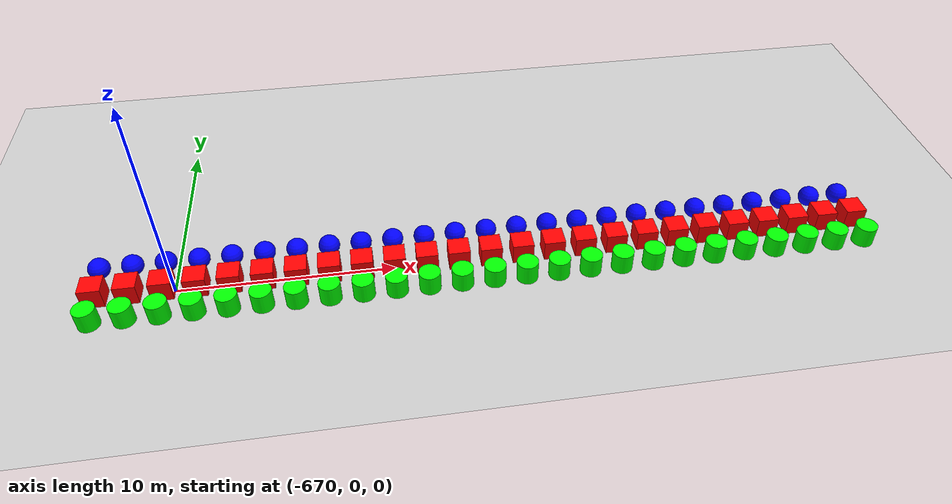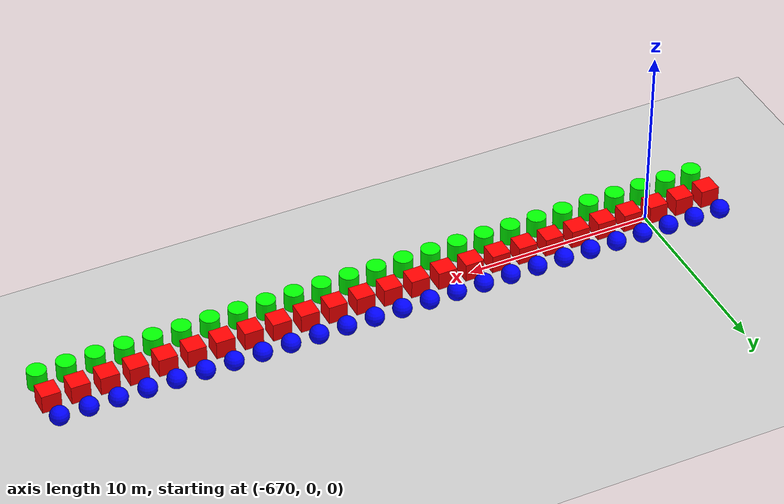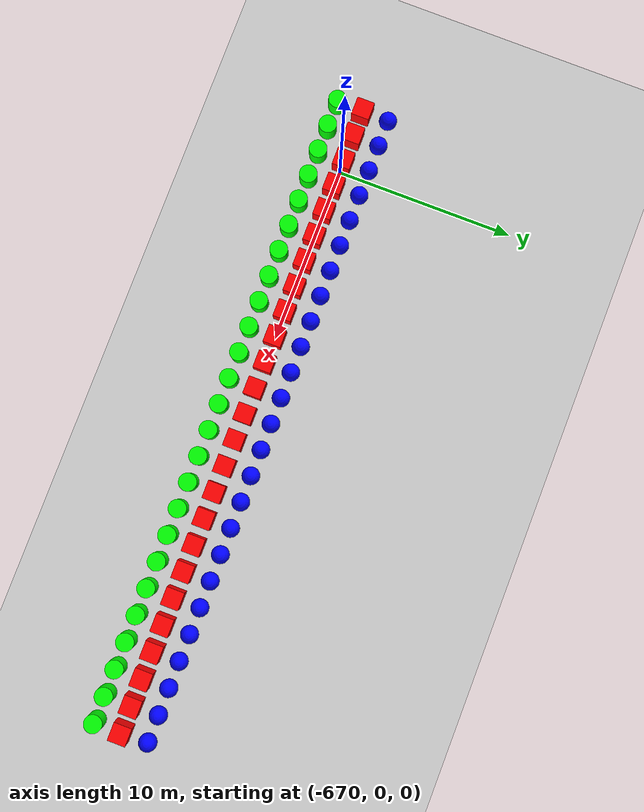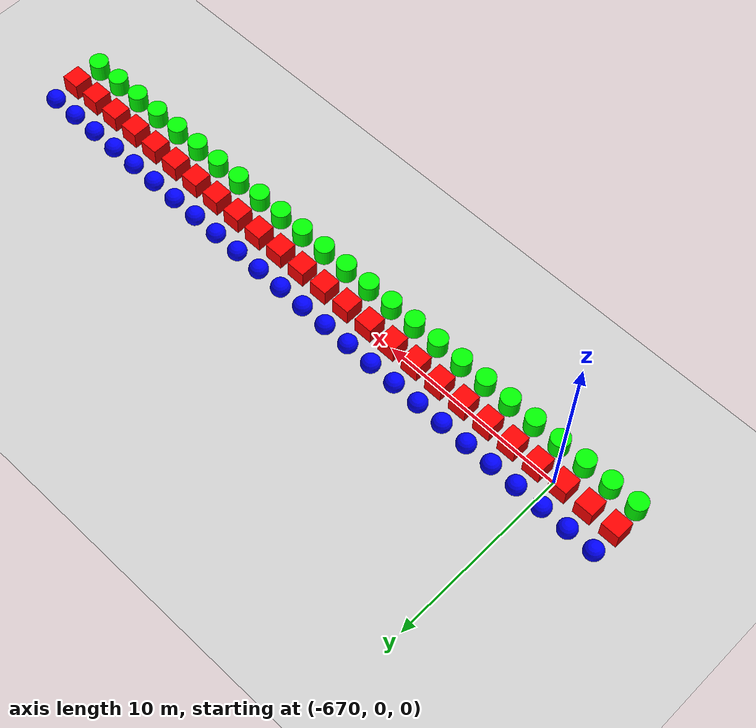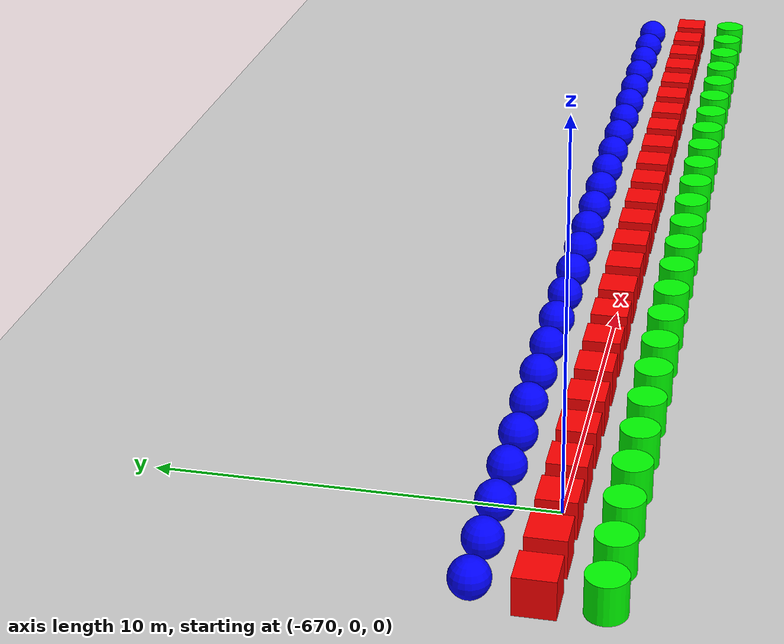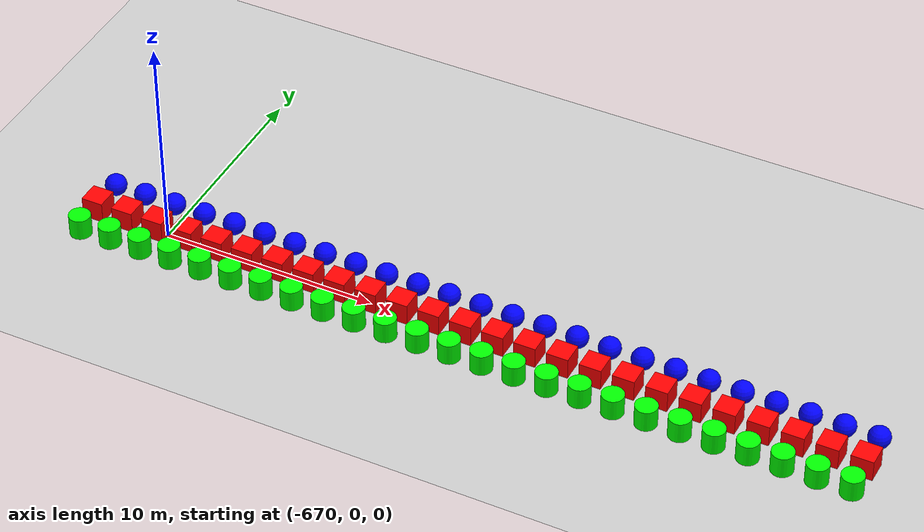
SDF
<sdf version="1.6">
 <world name="shapes">
  <model name="ground_plane">
   <static>true</static>
   <link name="link">
    <collision name="collision">
     <geometry><plane><normal>0 0 1</normal><size>100 100</size></plane></geometry>
    </collision>
    <visual name="visual">
     <geometry><plane><normal>0 0 1</normal><size>100 100</size></plane></geometry>
     <material>
      <ambient>0.8 0.8 0.8 1</ambient>
      <diffuse>0.8 0.8 0.8 1</diffuse>
      <specular>0.8 0.8 0.8 1</specular>
     </material>
    </visual>
   </link>
  </model>
  <model name="box_51">
   <static>true</static>
   <pose>-673.5 0 0.5 0 0 0</pose>
   <link name="box_link">
    <inertial>
     <inertia><ixx>1</ixx><ixy>0</ixy><ixz>0</ixz><iyy>1</iyy><iyz>0</iyz><izz>1</izz></inertia>
     <mass>1.0</mass>
    </inertial>
    <collision name="box_collision"><geometry><box><size>1 1 1</size></box></geometry></collision>
    <visual name="box_visual">
     <geometry><box><size>1 1 1</size></box></geometry>
     <material><ambient>1 0 0 1</ambient><diffuse>1 0 0 1</diffuse><specular>1 0 0 1</specular></material>
    </visual>
   </link>
  </model>
  <model name="cylinder_51">
   <static>true</static>
   <pose>-673.5 -1.5 0.5 0 0 0</pose>
   <link name="cylinder_link">
    <inertial>
     <inertia><ixx>2</ixx><ixy>0</ixy><ixz>0</ixz><iyy>2</iyy><iyz>0</iyz><izz>2</izz></inertia>
     <mass>2.0</mass>
    </inertial>
    <collision name="cylinder_collision">
     <geometry><cylinder><radius>0.5</radius><length>1.0</length></cylinder></geometry>
    </collision>
    <visual name="cylinder_visual">
     <geometry><cylinder><radius>0.5</radius><length>1.0</length></cylinder></geometry>
     <material><ambient>0 1 0 1</ambient><diffuse>0 1 0 1</diffuse><specular>0 1 0 1</specular></material>
    </visual>
   </link>
  </model>
  <model name="sphere_51">
   <static>true</static>
   <pose>-673.5 1.5 0.5 0 0 0</pose>
   <link name="sphere_link">
    <inertial>
     <inertia><ixx>3</ixx><ixy>0</ixy><ixz>0</ixz><iyy>3</iyy><iyz>0</iyz><izz>3</izz></inertia>
     <mass>3.0</mass>
    </inertial>
    <collision name="sphere_collision"><geometry><sphere><radius>0.5</radius></sphere></geometry></collision>
    <visual name="sphere_visual">
     <geometry><sphere><radius>0.5</radius></sphere></geometry>
     <material><ambient>0 0 1 1</ambient><diffuse>0 0 1 1</diffuse><specular>0 0 1 1</specular></material>
    </visual>
   </link>
  </model>
  <model name="box_52">
   <static>true</static>
   <pose>-672.0 0 0.5 0 0 0</pose>
   <link name="box_link">
    <inertial>
     <inertia><ixx>1</ixx><ixy>0</ixy><ixz>0</ixz><iyy>1</iyy><iyz>0</iyz><izz>1</izz></inertia>
     <mass>1.0</mass>
    </inertial>
    <collision name="box_collision"><geometry><box><size>1 1 1</size></box></geometry></collision>
    <visual name="box_visual">
     <geometry><box><size>1 1 1</size></box></geometry>
     <material><ambient>1 0 0 1</ambient><diffuse>1 0 0 1</diffuse><specular>1 0 0 1</specular></material>
    </visual>
   </link>
  </model>
  <model name="cylinder_52">
   <static>true</static>
   <pose>-672.0 -1.5 0.5 0 0 0</pose>
   <link name="cylinder_link">
    <inertial>
     <inertia><ixx>2</ixx><ixy>0</ixy><ixz>0</ixz><iyy>2</iyy><iyz>0</iyz><izz>2</izz></inertia>
     <mass>2.0</mass>
    </inertial>
    <collision name="cylinder_collision">
     <geometry><cylinder><radius>0.5</radius><length>1.0</length></cylinder></geometry>
    </collision>
    <visual name="cylinder_visual">
     <geometry><cylinder><radius>0.5</radius><length>1.0</length></cylinder></geometry>
     <material><ambient>0 1 0 1</ambient><diffuse>0 1 0 1</diffuse><specular>0 1 0 1</specular></material>
    </visual>
   </link>
  </model>
  <model name="sphere_52">
   <static>true</static>
   <pose>-672.0 1.5 0.5 0 0 0</pose>
   <link name="sphere_link">
    <inertial>
     <inertia><ixx>3</ixx><ixy>0</ixy><ixz>0</ixz><iyy>3</iyy><iyz>0</iyz><izz>3</izz></inertia>
     <mass>3.0</mass>
    </inertial>
    <collision name="sphere_collision"><geometry><sphere><radius>0.5</radius></sphere></geometry></collision>
    <visual name="sphere_visual">
     <geometry><sphere><radius>0.5</radius></sphere></geometry>
     <material><ambient>0 0 1 1</ambient><diffuse>0 0 1 1</diffuse><specular>0 0 1 1</specular></material>
    </visual>
   </link>
  </model>
  <model name="box_53">
   <static>true</static>
   <pose>-670.5 0 0.5 0 0 0</pose>
   <link name="box_link">
    <inertial>
     <inertia><ixx>1</ixx><ixy>0</ixy><ixz>0</ixz><iyy>1</iyy><iyz>0</iyz><izz>1</izz></inertia>
     <mass>1.0</mass>
    </inertial>
    <collision name="box_collision"><geometry><box><size>1 1 1</size></box></geometry></collision>
    <visual name="box_visual">
     <geometry><box><size>1 1 1</size></box></geometry>
     <material><ambient>1 0 0 1</ambient><diffuse>1 0 0 1</diffuse><specular>1 0 0 1</specular></material>
    </visual>
   </link>
  </model>
  <model name="cylinder_53">
   <static>true</static>
   <pose>-670.5 -1.5 0.5 0 0 0</pose>
   <link name="cylinder_link">
    <inertial>
     <inertia><ixx>2</ixx><ixy>0</ixy><ixz>0</ixz><iyy>2</iyy><iyz>0</iyz><izz>2</izz></inertia>
     <mass>2.0</mass>
    </inertial>
    <collision name="cylinder_collision">
     <geometry><cylinder><radius>0.5</radius><length>1.0</length></cylinder></geometry>
    </collision>
    <visual name="cylinder_visual">
     <geometry><cylinder><radius>0.5</radius><length>1.0</length></cylinder></geometry>
     <material><ambient>0 1 0 1</ambient><diffuse>0 1 0 1</diffuse><specular>0 1 0 1</specular></material>
    </visual>
   </link>
  </model>
  <model name="sphere_53">
   <static>true</static>
   <pose>-670.5 1.5 0.5 0 0 0</pose>
   <link name="sphere_link">
    <inertial>
     <inertia><ixx>3</ixx><ixy>0</ixy><ixz>0</ixz><iyy>3</iyy><iyz>0</iyz><izz>3</izz></inertia>
     <mass>3.0</mass>
    </inertial>
    <collision name="sphere_collision"><geometry><sphere><radius>0.5</radius></sphere></geometry></collision>
    <visual name="sphere_visual">
     <geometry><sphere><radius>0.5</radius></sphere></geometry>
     <material><ambient>0 0 1 1</ambient><diffuse>0 0 1 1</diffuse><specular>0 0 1 1</specular></material>
    </visual>
   </link>
  </model>
  <model name="box_54">
   <static>true</static>
   <pose>-669.0 0 0.5 0 0 0</pose>
   <link name="box_link">
    <inertial>
     <inertia><ixx>1</ixx><ixy>0</ixy><ixz>0</ixz><iyy>1</iyy><iyz>0</iyz><izz>1</izz></inertia>
     <mass>1.0</mass>
    </inertial>
    <collision name="box_collision"><geometry><box><size>1 1 1</size></box></geometry></collision>
    <visual name="box_visual">
     <geometry><box><size>1 1 1</size></box></geometry>
     <material><ambient>1 0 0 1</ambient><diffuse>1 0 0 1</diffuse><specular>1 0 0 1</specular></material>
    </visual>
   </link>
  </model>
  <model name="cylinder_54">
   <static>true</static>
   <pose>-669.0 -1.5 0.5 0 0 0</pose>
   <link name="cylinder_link">
    <inertial>
     <inertia><ixx>2</ixx><ixy>0</ixy><ixz>0</ixz><iyy>2</iyy><iyz>0</iyz><izz>2</izz></inertia>
     <mass>2.0</mass>
    </inertial>
    <collision name="cylinder_collision">
     <geometry><cylinder><radius>0.5</radius><length>1.0</length></cylinder></geometry>
    </collision>
    <visual name="cylinder_visual">
     <geometry><cylinder><radius>0.5</radius><length>1.0</length></cylinder></geometry>
     <material><ambient>0 1 0 1</ambient><diffuse>0 1 0 1</diffuse><specular>0 1 0 1</specular></material>
    </visual>
   </link>
  </model>
  <model name="sphere_54">
   <static>true</static>
   <pose>-669.0 1.5 0.5 0 0 0</pose>
   <link name="sphere_link">
    <inertial>
     <inertia><ixx>3</ixx><ixy>0</ixy><ixz>0</ixz><iyy>3</iyy><iyz>0</iyz><izz>3</izz></inertia>
     <mass>3.0</mass>
    </inertial>
    <collision name="sphere_collision"><geometry><sphere><radius>0.5</radius></sphere></geometry></collision>
    <visual name="sphere_visual">
     <geometry><sphere><radius>0.5</radius></sphere></geometry>
     <material><ambient>0 0 1 1</ambient><diffuse>0 0 1 1</diffuse><specular>0 0 1 1</specular></material>
    </visual>
   </link>
  </model>
  <model name="box_55">
   <static>true</static>
   <pose>-667.5 0 0.5 0 0 0</pose>
   <link name="box_link">
    <inertial>
     <inertia><ixx>1</ixx><ixy>0</ixy><ixz>0</ixz><iyy>1</iyy><iyz>0</iyz><izz>1</izz></inertia>
     <mass>1.0</mass>
    </inertial>
    <collision name="box_collision"><geometry><box><size>1 1 1</size></box></geometry></collision>
    <visual name="box_visual">
     <geometry><box><size>1 1 1</size></box></geometry>
     <material><ambient>1 0 0 1</ambient><diffuse>1 0 0 1</diffuse><specular>1 0 0 1</specular></material>
    </visual>
   </link>
  </model>
  <model name="cylinder_55">
   <static>true</static>
   <pose>-667.5 -1.5 0.5 0 0 0</pose>
   <link name="cylinder_link">
    <inertial>
     <inertia><ixx>2</ixx><ixy>0</ixy><ixz>0</ixz><iyy>2</iyy><iyz>0</iyz><izz>2</izz></inertia>
     <mass>2.0</mass>
    </inertial>
    <collision name="cylinder_collision">
     <geometry><cylinder><radius>0.5</radius><length>1.0</length></cylinder></geometry>
    </collision>
    <visual name="cylinder_visual">
     <geometry><cylinder><radius>0.5</radius><length>1.0</length></cylinder></geometry>
     <material><ambient>0 1 0 1</ambient><diffuse>0 1 0 1</diffuse><specular>0 1 0 1</specular></material>
    </visual>
   </link>
  </model>
  <model name="sphere_55">
   <static>true</static>
   <pose>-667.5 1.5 0.5 0 0 0</pose>
   <link name="sphere_link">
    <inertial>
     <inertia><ixx>3</ixx><ixy>0</ixy><ixz>0</ixz><iyy>3</iyy><iyz>0</iyz><izz>3</izz></inertia>
     <mass>3.0</mass>
    </inertial>
    <collision name="sphere_collision"><geometry><sphere><radius>0.5</radius></sphere></geometry></collision>
    <visual name="sphere_visual">
     <geometry><sphere><radius>0.5</radius></sphere></geometry>
     <material><ambient>0 0 1 1</ambient><diffuse>0 0 1 1</diffuse><specular>0 0 1 1</specular></material>
    </visual>
   </link>
  </model>
  <model name="box_56">
   <static>true</static>
   <pose>-666.0 0 0.5 0 0 0</pose>
   <link name="box_link">
    <inertial>
     <inertia><ixx>1</ixx><ixy>0</ixy><ixz>0</ixz><iyy>1</iyy><iyz>0</iyz><izz>1</izz></inertia>
     <mass>1.0</mass>
    </inertial>
    <collision name="box_collision"><geometry><box><size>1 1 1</size></box></geometry></collision>
    <visual name="box_visual">
     <geometry><box><size>1 1 1</size></box></geometry>
     <material><ambient>1 0 0 1</ambient><diffuse>1 0 0 1</diffuse><specular>1 0 0 1</specular></material>
    </visual>
   </link>
  </model>
  <model name="cylinder_56">
   <static>true</static>
   <pose>-666.0 -1.5 0.5 0 0 0</pose>
   <link name="cylinder_link">
    <inertial>
     <inertia><ixx>2</ixx><ixy>0</ixy><ixz>0</ixz><iyy>2</iyy><iyz>0</iyz><izz>2</izz></inertia>
     <mass>2.0</mass>
    </inertial>
    <collision name="cylinder_collision">
     <geometry><cylinder><radius>0.5</radius><length>1.0</length></cylinder></geometry>
    </collision>
    <visual name="cylinder_visual">
     <geometry><cylinder><radius>0.5</radius><length>1.0</length></cylinder></geometry>
     <material><ambient>0 1 0 1</ambient><diffuse>0 1 0 1</diffuse><specular>0 1 0 1</specular></material>
    </visual>
   </link>
  </model>
  <model name="sphere_56">
   <static>true</static>
   <pose>-666.0 1.5 0.5 0 0 0</pose>
   <link name="sphere_link">
    <inertial>
     <inertia><ixx>3</ixx><ixy>0</ixy><ixz>0</ixz><iyy>3</iyy><iyz>0</iyz><izz>3</izz></inertia>
     <mass>3.0</mass>
    </inertial>
    <collision name="sphere_collision"><geometry><sphere><radius>0.5</radius></sphere></geometry></collision>
    <visual name="sphere_visual">
     <geometry><sphere><radius>0.5</radius></sphere></geometry>
     <material><ambient>0 0 1 1</ambient><diffuse>0 0 1 1</diffuse><specular>0 0 1 1</specular></material>
    </visual>
   </link>
  </model>
  <model name="box_57">
   <static>true</static>
   <pose>-664.5 0 0.5 0 0 0</pose>
   <link name="box_link">
    <inertial>
     <inertia><ixx>1</ixx><ixy>0</ixy><ixz>0</ixz><iyy>1</iyy><iyz>0</iyz><izz>1</izz></inertia>
     <mass>1.0</mass>
    </inertial>
    <collision name="box_collision"><geometry><box><size>1 1 1</size></box></geometry></collision>
    <visual name="box_visual">
     <geometry><box><size>1 1 1</size></box></geometry>
     <material><ambient>1 0 0 1</ambient><diffuse>1 0 0 1</diffuse><specular>1 0 0 1</specular></material>
    </visual>
   </link>
  </model>
  <model name="cylinder_57">
   <static>true</static>
   <pose>-664.5 -1.5 0.5 0 0 0</pose>
   <link name="cylinder_link">
    <inertial>
     <inertia><ixx>2</ixx><ixy>0</ixy><ixz>0</ixz><iyy>2</iyy><iyz>0</iyz><izz>2</izz></inertia>
     <mass>2.0</mass>
    </inertial>
    <collision name="cylinder_collision">
     <geometry><cylinder><radius>0.5</radius><length>1.0</length></cylinder></geometry>
    </collision>
    <visual name="cylinder_visual">
     <geometry><cylinder><radius>0.5</radius><length>1.0</length></cylinder></geometry>
     <material><ambient>0 1 0 1</ambient><diffuse>0 1 0 1</diffuse><specular>0 1 0 1</specular></material>
    </visual>
   </link>
  </model>
  <model name="sphere_57">
   <static>true</static>
   <pose>-664.5 1.5 0.5 0 0 0</pose>
   <link name="sphere_link">
    <inertial>
     <inertia><ixx>3</ixx><ixy>0</ixy><ixz>0</ixz><iyy>3</iyy><iyz>0</iyz><izz>3</izz></inertia>
     <mass>3.0</mass>
    </inertial>
    <collision name="sphere_collision"><geometry><sphere><radius>0.5</radius></sphere></geometry></collision>
    <visual name="sphere_visual">
     <geometry><sphere><radius>0.5</radius></sphere></geometry>
     <material><ambient>0 0 1 1</ambient><diffuse>0 0 1 1</diffuse><specular>0 0 1 1</specular></material>
    </visual>
   </link>
  </model>
  <model name="box_58">
   <static>true</static>
   <pose>-663.0 0 0.5 0 0 0</pose>
   <link name="box_link">
    <inertial>
     <inertia><ixx>1</ixx><ixy>0</ixy><ixz>0</ixz><iyy>1</iyy><iyz>0</iyz><izz>1</izz></inertia>
     <mass>1.0</mass>
    </inertial>
    <collision name="box_collision"><geometry><box><size>1 1 1</size></box></geometry></collision>
    <visual name="box_visual">
     <geometry><box><size>1 1 1</size></box></geometry>
     <material><ambient>1 0 0 1</ambient><diffuse>1 0 0 1</diffuse><specular>1 0 0 1</specular></material>
    </visual>
   </link>
  </model>
  <model name="cylinder_58">
   <static>true</static>
   <pose>-663.0 -1.5 0.5 0 0 0</pose>
   <link name="cylinder_link">
    <inertial>
     <inertia><ixx>2</ixx><ixy>0</ixy><ixz>0</ixz><iyy>2</iyy><iyz>0</iyz><izz>2</izz></inertia>
     <mass>2.0</mass>
    </inertial>
    <collision name="cylinder_collision">
     <geometry><cylinder><radius>0.5</radius><length>1.0</length></cylinder></geometry>
    </collision>
    <visual name="cylinder_visual">
     <geometry><cylinder><radius>0.5</radius><length>1.0</length></cylinder></geometry>
     <material><ambient>0 1 0 1</ambient><diffuse>0 1 0 1</diffuse><specular>0 1 0 1</specular></material>
    </visual>
   </link>
  </model>
  <model name="sphere_58">
   <static>true</static>
   <pose>-663.0 1.5 0.5 0 0 0</pose>
   <link name="sphere_link">
    <inertial>
     <inertia><ixx>3</ixx><ixy>0</ixy><ixz>0</ixz><iyy>3</iyy><iyz>0</iyz><izz>3</izz></inertia>
     <mass>3.0</mass>
    </inertial>
    <collision name="sphere_collision"><geometry><sphere><radius>0.5</radius></sphere></geometry></collision>
    <visual name="sphere_visual">
     <geometry><sphere><radius>0.5</radius></sphere></geometry>
     <material><ambient>0 0 1 1</ambient><diffuse>0 0 1 1</diffuse><specular>0 0 1 1</specular></material>
    </visual>
   </link>
  </model>
  <model name="box_59">
   <static>true</static>
   <pose>-661.5 0 0.5 0 0 0</pose>
   <link name="box_link">
    <inertial>
     <inertia><ixx>1</ixx><ixy>0</ixy><ixz>0</ixz><iyy>1</iyy><iyz>0</iyz><izz>1</izz></inertia>
     <mass>1.0</mass>
    </inertial>
    <collision name="box_collision"><geometry><box><size>1 1 1</size></box></geometry></collision>
    <visual name="box_visual">
     <geometry><box><size>1 1 1</size></box></geometry>
     <material><ambient>1 0 0 1</ambient><diffuse>1 0 0 1</diffuse><specular>1 0 0 1</specular></material>
    </visual>
   </link>
  </model>
  <model name="cylinder_59">
   <static>true</static>
   <pose>-661.5 -1.5 0.5 0 0 0</pose>
   <link name="cylinder_link">
    <inertial>
     <inertia><ixx>2</ixx><ixy>0</ixy><ixz>0</ixz><iyy>2</iyy><iyz>0</iyz><izz>2</izz></inertia>
     <mass>2.0</mass>
    </inertial>
    <collision name="cylinder_collision">
     <geometry><cylinder><radius>0.5</radius><length>1.0</length></cylinder></geometry>
    </collision>
    <visual name="cylinder_visual">
     <geometry><cylinder><radius>0.5</radius><length>1.0</length></cylinder></geometry>
     <material><ambient>0 1 0 1</ambient><diffuse>0 1 0 1</diffuse><specular>0 1 0 1</specular></material>
    </visual>
   </link>
  </model>
  <model name="sphere_59">
   <static>true</static>
   <pose>-661.5 1.5 0.5 0 0 0</pose>
   <link name="sphere_link">
    <inertial>
     <inertia><ixx>3</ixx><ixy>0</ixy><ixz>0</ixz><iyy>3</iyy><iyz>0</iyz><izz>3</izz></inertia>
     <mass>3.0</mass>
    </inertial>
    <collision name="sphere_collision"><geometry><sphere><radius>0.5</radius></sphere></geometry></collision>
    <visual name="sphere_visual">
     <geometry><sphere><radius>0.5</radius></sphere></geometry>
     <material><ambient>0 0 1 1</ambient><diffuse>0 0 1 1</diffuse><specular>0 0 1 1</specular></material>
    </visual>
   </link>
  </model>
  <model name="box_60">
   <static>true</static>
   <pose>-660.0 0 0.5 0 0 0</pose>
   <link name="box_link">
    <inertial>
     <inertia><ixx>1</ixx><ixy>0</ixy><ixz>0</ixz><iyy>1</iyy><iyz>0</iyz><izz>1</izz></inertia>
     <mass>1.0</mass>
    </inertial>
    <collision name="box_collision"><geometry><box><size>1 1 1</size></box></geometry></collision>
    <visual name="box_visual">
     <geometry><box><size>1 1 1</size></box></geometry>
     <material><ambient>1 0 0 1</ambient><diffuse>1 0 0 1</diffuse><specular>1 0 0 1</specular></material>
    </visual>
   </link>
  </model>
  <model name="cylinder_60">
   <static>true</static>
   <pose>-660.0 -1.5 0.5 0 0 0</pose>
   <link name="cylinder_link">
    <inertial>
     <inertia><ixx>2</ixx><ixy>0</ixy><ixz>0</ixz><iyy>2</iyy><iyz>0</iyz><izz>2</izz></inertia>
     <mass>2.0</mass>
    </inertial>
    <collision name="cylinder_collision">
     <geometry><cylinder><radius>0.5</radius><length>1.0</length></cylinder></geometry>
    </collision>
    <visual name="cylinder_visual">
     <geometry><cylinder><radius>0.5</radius><length>1.0</length></cylinder></geometry>
     <material><ambient>0 1 0 1</ambient><diffuse>0 1 0 1</diffuse><specular>0 1 0 1</specular></material>
    </visual>
   </link>
  </model>
  <model name="sphere_60">
   <static>true</static>
   <pose>-660.0 1.5 0.5 0 0 0</pose>
   <link name="sphere_link">
    <inertial>
     <inertia><ixx>3</ixx><ixy>0</ixy><ixz>0</ixz><iyy>3</iyy><iyz>0</iyz><izz>3</izz></inertia>
     <mass>3.0</mass>
    </inertial>
    <collision name="sphere_collision"><geometry><sphere><radius>0.5</radius></sphere></geometry></collision>
    <visual name="sphere_visual">
     <geometry><sphere><radius>0.5</radius></sphere></geometry>
     <material><ambient>0 0 1 1</ambient><diffuse>0 0 1 1</diffuse><specular>0 0 1 1</specular></material>
    </visual>
   </link>
  </model>
  <model name="box_61">
   <static>true</static>
   <pose>-658.5 0 0.5 0 0 0</pose>
   <link name="box_link">
    <inertial>
     <inertia><ixx>1</ixx><ixy>0</ixy><ixz>0</ixz><iyy>1</iyy><iyz>0</iyz><izz>1</izz></inertia>
     <mass>1.0</mass>
    </inertial>
    <collision name="box_collision"><geometry><box><size>1 1 1</size></box></geometry></collision>
    <visual name="box_visual">
     <geometry><box><size>1 1 1</size></box></geometry>
     <material><ambient>1 0 0 1</ambient><diffuse>1 0 0 1</diffuse><specular>1 0 0 1</specular></material>
    </visual>
   </link>
  </model>
  <model name="cylinder_61">
   <static>true</static>
   <pose>-658.5 -1.5 0.5 0 0 0</pose>
   <link name="cylinder_link">
    <inertial>
     <inertia><ixx>2</ixx><ixy>0</ixy><ixz>0</ixz><iyy>2</iyy><iyz>0</iyz><izz>2</izz></inertia>
     <mass>2.0</mass>
    </inertial>
    <collision name="cylinder_collision">
     <geometry><cylinder><radius>0.5</radius><length>1.0</length></cylinder></geometry>
    </collision>
    <visual name="cylinder_visual">
     <geometry><cylinder><radius>0.5</radius><length>1.0</length></cylinder></geometry>
     <material><ambient>0 1 0 1</ambient><diffuse>0 1 0 1</diffuse><specular>0 1 0 1</specular></material>
    </visual>
   </link>
  </model>
  <model name="sphere_61">
   <static>true</static>
   <pose>-658.5 1.5 0.5 0 0 0</pose>
   <link name="sphere_link">
    <inertial>
     <inertia><ixx>3</ixx><ixy>0</ixy><ixz>0</ixz><iyy>3</iyy><iyz>0</iyz><izz>3</izz></inertia>
     <mass>3.0</mass>
    </inertial>
    <collision name="sphere_collision"><geometry><sphere><radius>0.5</radius></sphere></geometry></collision>
    <visual name="sphere_visual">
     <geometry><sphere><radius>0.5</radius></sphere></geometry>
     <material><ambient>0 0 1 1</ambient><diffuse>0 0 1 1</diffuse><specular>0 0 1 1</specular></material>
    </visual>
   </link>
  </model>
  <model name="box_62">
   <static>true</static>
   <pose>-657.0 0 0.5 0 0 0</pose>
   <link name="box_link">
    <inertial>
     <inertia><ixx>1</ixx><ixy>0</ixy><ixz>0</ixz><iyy>1</iyy><iyz>0</iyz><izz>1</izz></inertia>
     <mass>1.0</mass>
    </inertial>
    <collision name="box_collision"><geometry><box><size>1 1 1</size></box></geometry></collision>
    <visual name="box_visual">
     <geometry><box><size>1 1 1</size></box></geometry>
     <material><ambient>1 0 0 1</ambient><diffuse>1 0 0 1</diffuse><specular>1 0 0 1</specular></material>
    </visual>
   </link>
  </model>
  <model name="cylinder_62">
   <static>true</static>
   <pose>-657.0 -1.5 0.5 0 0 0</pose>
   <link name="cylinder_link">
    <inertial>
     <inertia><ixx>2</ixx><ixy>0</ixy><ixz>0</ixz><iyy>2</iyy><iyz>0</iyz><izz>2</izz></inertia>
     <mass>2.0</mass>
    </inertial>
    <collision name="cylinder_collision">
     <geometry><cylinder><radius>0.5</radius><length>1.0</length></cylinder></geometry>
    </collision>
    <visual name="cylinder_visual">
     <geometry><cylinder><radius>0.5</radius><length>1.0</length></cylinder></geometry>
     <material><ambient>0 1 0 1</ambient><diffuse>0 1 0 1</diffuse><specular>0 1 0 1</specular></material>
    </visual>
   </link>
  </model>
  <model name="sphere_62">
   <static>true</static>
   <pose>-657.0 1.5 0.5 0 0 0</pose>
   <link name="sphere_link">
    <inertial>
     <inertia><ixx>3</ixx><ixy>0</ixy><ixz>0</ixz><iyy>3</iyy><iyz>0</iyz><izz>3</izz></inertia>
     <mass>3.0</mass>
    </inertial>
    <collision name="sphere_collision"><geometry><sphere><radius>0.5</radius></sphere></geometry></collision>
    <visual name="sphere_visual">
     <geometry><sphere><radius>0.5</radius></sphere></geometry>
     <material><ambient>0 0 1 1</ambient><diffuse>0 0 1 1</diffuse><specular>0 0 1 1</specular></material>
    </visual>
   </link>
  </model>
  <model name="box_63">
   <static>true</static>
   <pose>-655.5 0 0.5 0 0 0</pose>
   <link name="box_link">
    <inertial>
     <inertia><ixx>1</ixx><ixy>0</ixy><ixz>0</ixz><iyy>1</iyy><iyz>0</iyz><izz>1</izz></inertia>
     <mass>1.0</mass>
    </inertial>
    <collision name="box_collision"><geometry><box><size>1 1 1</size></box></geometry></collision>
    <visual name="box_visual">
     <geometry><box><size>1 1 1</size></box></geometry>
     <material><ambient>1 0 0 1</ambient><diffuse>1 0 0 1</diffuse><specular>1 0 0 1</specular></material>
    </visual>
   </link>
  </model>
  <model name="cylinder_63">
   <static>true</static>
   <pose>-655.5 -1.5 0.5 0 0 0</pose>
   <link name="cylinder_link">
    <inertial>
     <inertia><ixx>2</ixx><ixy>0</ixy><ixz>0</ixz><iyy>2</iyy><iyz>0</iyz><izz>2</izz></inertia>
     <mass>2.0</mass>
    </inertial>
    <collision name="cylinder_collision">
     <geometry><cylinder><radius>0.5</radius><length>1.0</length></cylinder></geometry>
    </collision>
    <visual name="cylinder_visual">
     <geometry><cylinder><radius>0.5</radius><length>1.0</length></cylinder></geometry>
     <material><ambient>0 1 0 1</ambient><diffuse>0 1 0 1</diffuse><specular>0 1 0 1</specular></material>
    </visual>
   </link>
  </model>
  <model name="sphere_63">
   <static>true</static>
   <pose>-655.5 1.5 0.5 0 0 0</pose>
   <link name="sphere_link">
    <inertial>
     <inertia><ixx>3</ixx><ixy>0</ixy><ixz>0</ixz><iyy>3</iyy><iyz>0</iyz><izz>3</izz></inertia>
     <mass>3.0</mass>
    </inertial>
    <collision name="sphere_collision"><geometry><sphere><radius>0.5</radius></sphere></geometry></collision>
    <visual name="sphere_visual">
     <geometry><sphere><radius>0.5</radius></sphere></geometry>
     <material><ambient>0 0 1 1</ambient><diffuse>0 0 1 1</diffuse><specular>0 0 1 1</specular></material>
    </visual>
   </link>
  </model>
  <model name="box_64">
   <static>true</static>
   <pose>-654.0 0 0.5 0 0 0</pose>
   <link name="box_link">
    <inertial>
     <inertia><ixx>1</ixx><ixy>0</ixy><ixz>0</ixz><iyy>1</iyy><iyz>0</iyz><izz>1</izz></inertia>
     <mass>1.0</mass>
    </inertial>
    <collision name="box_collision"><geometry><box><size>1 1 1</size></box></geometry></collision>
    <visual name="box_visual">
     <geometry><box><size>1 1 1</size></box></geometry>
     <material><ambient>1 0 0 1</ambient><diffuse>1 0 0 1</diffuse><specular>1 0 0 1</specular></material>
    </visual>
   </link>
  </model>
  <model name="cylinder_64">
   <static>true</static>
   <pose>-654.0 -1.5 0.5 0 0 0</pose>
   <link name="cylinder_link">
    <inertial>
     <inertia><ixx>2</ixx><ixy>0</ixy><ixz>0</ixz><iyy>2</iyy><iyz>0</iyz><izz>2</izz></inertia>
     <mass>2.0</mass>
    </inertial>
    <collision name="cylinder_collision">
     <geometry><cylinder><radius>0.5</radius><length>1.0</length></cylinder></geometry>
    </collision>
    <visual name="cylinder_visual">
     <geometry><cylinder><radius>0.5</radius><length>1.0</length></cylinder></geometry>
     <material><ambient>0 1 0 1</ambient><diffuse>0 1 0 1</diffuse><specular>0 1 0 1</specular></material>
    </visual>
   </link>
  </model>
  <model name="sphere_64">
   <static>true</static>
   <pose>-654.0 1.5 0.5 0 0 0</pose>
   <link name="sphere_link">
    <inertial>
     <inertia><ixx>3</ixx><ixy>0</ixy><ixz>0</ixz><iyy>3</iyy><iyz>0</iyz><izz>3</izz></inertia>
     <mass>3.0</mass>
    </inertial>
    <collision name="sphere_collision"><geometry><sphere><radius>0.5</radius></sphere></geometry></collision>
    <visual name="sphere_visual">
     <geometry><sphere><radius>0.5</radius></sphere></geometry>
     <material><ambient>0 0 1 1</ambient><diffuse>0 0 1 1</diffuse><specular>0 0 1 1</specular></material>
    </visual>
   </link>
  </model>
  <model name="box_65">
   <static>true</static>
   <pose>-652.5 0 0.5 0 0 0</pose>
   <link name="box_link">
    <inertial>
     <inertia><ixx>1</ixx><ixy>0</ixy><ixz>0</ixz><iyy>1</iyy><iyz>0</iyz><izz>1</izz></inertia>
     <mass>1.0</mass>
    </inertial>
    <collision name="box_collision"><geometry><box><size>1 1 1</size></box></geometry></collision>
    <visual name="box_visual">
     <geometry><box><size>1 1 1</size></box></geometry>
     <material><ambient>1 0 0 1</ambient><diffuse>1 0 0 1</diffuse><specular>1 0 0 1</specular></material>
    </visual>
   </link>
  </model>
  <model name="cylinder_65">
   <static>true</static>
   <pose>-652.5 -1.5 0.5 0 0 0</pose>
   <link name="cylinder_link">
    <inertial>
     <inertia><ixx>2</ixx><ixy>0</ixy><ixz>0</ixz><iyy>2</iyy><iyz>0</iyz><izz>2</izz></inertia>
     <mass>2.0</mass>
    </inertial>
    <collision name="cylinder_collision">
     <geometry><cylinder><radius>0.5</radius><length>1.0</length></cylinder></geometry>
    </collision>
    <visual name="cylinder_visual">
     <geometry><cylinder><radius>0.5</radius><length>1.0</length></cylinder></geometry>
     <material><ambient>0 1 0 1</ambient><diffuse>0 1 0 1</diffuse><specular>0 1 0 1</specular></material>
    </visual>
   </link>
  </model>
  <model name="sphere_65">
   <static>true</static>
   <pose>-652.5 1.5 0.5 0 0 0</pose>
   <link name="sphere_link">
    <inertial>
     <inertia><ixx>3</ixx><ixy>0</ixy><ixz>0</ixz><iyy>3</iyy><iyz>0</iyz><izz>3</izz></inertia>
     <mass>3.0</mass>
    </inertial>
    <collision name="sphere_collision"><geometry><sphere><radius>0.5</radius></sphere></geometry></collision>
    <visual name="sphere_visual">
     <geometry><sphere><radius>0.5</radius></sphere></geometry>
     <material><ambient>0 0 1 1</ambient><diffuse>0 0 1 1</diffuse><specular>0 0 1 1</specular></material>
    </visual>
   </link>
  </model>
  <model name="box_66">
   <static>true</static>
   <pose>-651.0 0 0.5 0 0 0</pose>
   <link name="box_link">
    <inertial>
     <inertia><ixx>1</ixx><ixy>0</ixy><ixz>0</ixz><iyy>1</iyy><iyz>0</iyz><izz>1</izz></inertia>
     <mass>1.0</mass>
    </inertial>
    <collision name="box_collision"><geometry><box><size>1 1 1</size></box></geometry></collision>
    <visual name="box_visual">
     <geometry><box><size>1 1 1</size></box></geometry>
     <material><ambient>1 0 0 1</ambient><diffuse>1 0 0 1</diffuse><specular>1 0 0 1</specular></material>
    </visual>
   </link>
  </model>
  <model name="cylinder_66">
   <static>true</static>
   <pose>-651.0 -1.5 0.5 0 0 0</pose>
   <link name="cylinder_link">
    <inertial>
     <inertia><ixx>2</ixx><ixy>0</ixy><ixz>0</ixz><iyy>2</iyy><iyz>0</iyz><izz>2</izz></inertia>
     <mass>2.0</mass>
    </inertial>
    <collision name="cylinder_collision">
     <geometry><cylinder><radius>0.5</radius><length>1.0</length></cylinder></geometry>
    </collision>
    <visual name="cylinder_visual">
     <geometry><cylinder><radius>0.5</radius><length>1.0</length></cylinder></geometry>
     <material><ambient>0 1 0 1</ambient><diffuse>0 1 0 1</diffuse><specular>0 1 0 1</specular></material>
    </visual>
   </link>
  </model>
  <model name="sphere_66">
   <static>true</static>
   <pose>-651.0 1.5 0.5 0 0 0</pose>
   <link name="sphere_link">
    <inertial>
     <inertia><ixx>3</ixx><ixy>0</ixy><ixz>0</ixz><iyy>3</iyy><iyz>0</iyz><izz>3</izz></inertia>
     <mass>3.0</mass>
    </inertial>
    <collision name="sphere_collision"><geometry><sphere><radius>0.5</radius></sphere></geometry></collision>
    <visual name="sphere_visual">
     <geometry><sphere><radius>0.5</radius></sphere></geometry>
     <material><ambient>0 0 1 1</ambient><diffuse>0 0 1 1</diffuse><specular>0 0 1 1</specular></material>
    </visual>
   </link>
  </model>
  <model name="box_67">
   <static>true</static>
   <pose>-649.5 0 0.5 0 0 0</pose>
   <link name="box_link">
    <inertial>
     <inertia><ixx>1</ixx><ixy>0</ixy><ixz>0</ixz><iyy>1</iyy><iyz>0</iyz><izz>1</izz></inertia>
     <mass>1.0</mass>
    </inertial>
    <collision name="box_collision"><geometry><box><size>1 1 1</size></box></geometry></collision>
    <visual name="box_visual">
     <geometry><box><size>1 1 1</size></box></geometry>
     <material><ambient>1 0 0 1</ambient><diffuse>1 0 0 1</diffuse><specular>1 0 0 1</specular></material>
    </visual>
   </link>
  </model>
  <model name="cylinder_67">
   <static>true</static>
   <pose>-649.5 -1.5 0.5 0 0 0</pose>
   <link name="cylinder_link">
    <inertial>
     <inertia><ixx>2</ixx><ixy>0</ixy><ixz>0</ixz><iyy>2</iyy><iyz>0</iyz><izz>2</izz></inertia>
     <mass>2.0</mass>
    </inertial>
    <collision name="cylinder_collision">
     <geometry><cylinder><radius>0.5</radius><length>1.0</length></cylinder></geometry>
    </collision>
    <visual name="cylinder_visual">
     <geometry><cylinder><radius>0.5</radius><length>1.0</length></cylinder></geometry>
     <material><ambient>0 1 0 1</ambient><diffuse>0 1 0 1</diffuse><specular>0 1 0 1</specular></material>
    </visual>
   </link>
  </model>
  <model name="sphere_67">
   <static>true</static>
   <pose>-649.5 1.5 0.5 0 0 0</pose>
   <link name="sphere_link">
    <inertial>
     <inertia><ixx>3</ixx><ixy>0</ixy><ixz>0</ixz><iyy>3</iyy><iyz>0</iyz><izz>3</izz></inertia>
     <mass>3.0</mass>
    </inertial>
    <collision name="sphere_collision"><geometry><sphere><radius>0.5</radius></sphere></geometry></collision>
    <visual name="sphere_visual">
     <geometry><sphere><radius>0.5</radius></sphere></geometry>
     <material><ambient>0 0 1 1</ambient><diffuse>0 0 1 1</diffuse><specular>0 0 1 1</specular></material>
    </visual>
   </link>
  </model>
  <model name="box_68">
   <static>true</static>
   <pose>-648.0 0 0.5 0 0 0</pose>
   <link name="box_link">
    <inertial>
     <inertia><ixx>1</ixx><ixy>0</ixy><ixz>0</ixz><iyy>1</iyy><iyz>0</iyz><izz>1</izz></inertia>
     <mass>1.0</mass>
    </inertial>
    <collision name="box_collision"><geometry><box><size>1 1 1</size></box></geometry></collision>
    <visual name="box_visual">
     <geometry><box><size>1 1 1</size></box></geometry>
     <material><ambient>1 0 0 1</ambient><diffuse>1 0 0 1</diffuse><specular>1 0 0 1</specular></material>
    </visual>
   </link>
  </model>
  <model name="cylinder_68">
   <static>true</static>
   <pose>-648.0 -1.5 0.5 0 0 0</pose>
   <link name="cylinder_link">
    <inertial>
     <inertia><ixx>2</ixx><ixy>0</ixy><ixz>0</ixz><iyy>2</iyy><iyz>0</iyz><izz>2</izz></inertia>
     <mass>2.0</mass>
    </inertial>
    <collision name="cylinder_collision">
     <geometry><cylinder><radius>0.5</radius><length>1.0</length></cylinder></geometry>
    </collision>
    <visual name="cylinder_visual">
     <geometry><cylinder><radius>0.5</radius><length>1.0</length></cylinder></geometry>
     <material><ambient>0 1 0 1</ambient><diffuse>0 1 0 1</diffuse><specular>0 1 0 1</specular></material>
    </visual>
   </link>
  </model>
  <model name="sphere_68">
   <static>true</static>
   <pose>-648.0 1.5 0.5 0 0 0</pose>
   <link name="sphere_link">
    <inertial>
     <inertia><ixx>3</ixx><ixy>0</ixy><ixz>0</ixz><iyy>3</iyy><iyz>0</iyz><izz>3</izz></inertia>
     <mass>3.0</mass>
    </inertial>
    <collision name="sphere_collision"><geometry><sphere><radius>0.5</radius></sphere></geometry></collision>
    <visual name="sphere_visual">
     <geometry><sphere><radius>0.5</radius></sphere></geometry>
     <material><ambient>0 0 1 1</ambient><diffuse>0 0 1 1</diffuse><specular>0 0 1 1</specular></material>
    </visual>
   </link>
  </model>
  <model name="box_69">
   <static>true</static>
   <pose>-646.5 0 0.5 0 0 0</pose>
   <link name="box_link">
    <inertial>
     <inertia><ixx>1</ixx><ixy>0</ixy><ixz>0</ixz><iyy>1</iyy><iyz>0</iyz><izz>1</izz></inertia>
     <mass>1.0</mass>
    </inertial>
    <collision name="box_collision"><geometry><box><size>1 1 1</size></box></geometry></collision>
    <visual name="box_visual">
     <geometry><box><size>1 1 1</size></box></geometry>
     <material><ambient>1 0 0 1</ambient><diffuse>1 0 0 1</diffuse><specular>1 0 0 1</specular></material>
    </visual>
   </link>
  </model>
  <model name="cylinder_69">
   <static>true</static>
   <pose>-646.5 -1.5 0.5 0 0 0</pose>
   <link name="cylinder_link">
    <inertial>
     <inertia><ixx>2</ixx><ixy>0</ixy><ixz>0</ixz><iyy>2</iyy><iyz>0</iyz><izz>2</izz></inertia>
     <mass>2.0</mass>
    </inertial>
    <collision name="cylinder_collision">
     <geometry><cylinder><radius>0.5</radius><length>1.0</length></cylinder></geometry>
    </collision>
    <visual name="cylinder_visual">
     <geometry><cylinder><radius>0.5</radius><length>1.0</length></cylinder></geometry>
     <material><ambient>0 1 0 1</ambient><diffuse>0 1 0 1</diffuse><specular>0 1 0 1</specular></material>
    </visual>
   </link>
  </model>
  <model name="sphere_69">
   <static>true</static>
   <pose>-646.5 1.5 0.5 0 0 0</pose>
   <link name="sphere_link">
    <inertial>
     <inertia><ixx>3</ixx><ixy>0</ixy><ixz>0</ixz><iyy>3</iyy><iyz>0</iyz><izz>3</izz></inertia>
     <mass>3.0</mass>
    </inertial>
    <collision name="sphere_collision"><geometry><sphere><radius>0.5</radius></sphere></geometry></collision>
    <visual name="sphere_visual">
     <geometry><sphere><radius>0.5</radius></sphere></geometry>
     <material><ambient>0 0 1 1</ambient><diffuse>0 0 1 1</diffuse><specular>0 0 1 1</specular></material>
    </visual>
   </link>
  </model>
  <model name="box_70">
   <static>true</static>
   <pose>-645.0 0 0.5 0 0 0</pose>
   <link name="box_link">
    <inertial>
     <inertia><ixx>1</ixx><ixy>0</ixy><ixz>0</ixz><iyy>1</iyy><iyz>0</iyz><izz>1</izz></inertia>
     <mass>1.0</mass>
    </inertial>
    <collision name="box_collision"><geometry><box><size>1 1 1</size></box></geometry></collision>
    <visual name="box_visual">
     <geometry><box><size>1 1 1</size></box></geometry>
     <material><ambient>1 0 0 1</ambient><diffuse>1 0 0 1</diffuse><specular>1 0 0 1</specular></material>
    </visual>
   </link>
  </model>
  <model name="cylinder_70">
   <static>true</static>
   <pose>-645.0 -1.5 0.5 0 0 0</pose>
   <link name="cylinder_link">
    <inertial>
     <inertia><ixx>2</ixx><ixy>0</ixy><ixz>0</ixz><iyy>2</iyy><iyz>0</iyz><izz>2</izz></inertia>
     <mass>2.0</mass>
    </inertial>
    <collision name="cylinder_collision">
     <geometry><cylinder><radius>0.5</radius><length>1.0</length></cylinder></geometry>
    </collision>
    <visual name="cylinder_visual">
     <geometry><cylinder><radius>0.5</radius><length>1.0</length></cylinder></geometry>
     <material><ambient>0 1 0 1</ambient><diffuse>0 1 0 1</diffuse><specular>0 1 0 1</specular></material>
    </visual>
   </link>
  </model>
  <model name="sphere_70">
   <static>true</static>
   <pose>-645.0 1.5 0.5 0 0 0</pose>
   <link name="sphere_link">
    <inertial>
     <inertia><ixx>3</ixx><ixy>0</ixy><ixz>0</ixz><iyy>3</iyy><iyz>0</iyz><izz>3</izz></inertia>
     <mass>3.0</mass>
    </inertial>
    <collision name="sphere_collision"><geometry><sphere><radius>0.5</radius></sphere></geometry></collision>
    <visual name="sphere_visual">
     <geometry><sphere><radius>0.5</radius></sphere></geometry>
     <material><ambient>0 0 1 1</ambient><diffuse>0 0 1 1</diffuse><specular>0 0 1 1</specular></material>
    </visual>
   </link>
  </model>
  <model name="box_71">
   <static>true</static>
   <pose>-643.5 0 0.5 0 0 0</pose>
   <link name="box_link">
    <inertial>
     <inertia><ixx>1</ixx><ixy>0</ixy><ixz>0</ixz><iyy>1</iyy><iyz>0</iyz><izz>1</izz></inertia>
     <mass>1.0</mass>
    </inertial>
    <collision name="box_collision"><geometry><box><size>1 1 1</size></box></geometry></collision>
    <visual name="box_visual">
     <geometry><box><size>1 1 1</size></box></geometry>
     <material><ambient>1 0 0 1</ambient><diffuse>1 0 0 1</diffuse><specular>1 0 0 1</specular></material>
    </visual>
   </link>
  </model>
  <model name="cylinder_71">
   <static>true</static>
   <pose>-643.5 -1.5 0.5 0 0 0</pose>
   <link name="cylinder_link">
    <inertial>
     <inertia><ixx>2</ixx><ixy>0</ixy><ixz>0</ixz><iyy>2</iyy><iyz>0</iyz><izz>2</izz></inertia>
     <mass>2.0</mass>
    </inertial>
    <collision name="cylinder_collision">
     <geometry><cylinder><radius>0.5</radius><length>1.0</length></cylinder></geometry>
    </collision>
    <visual name="cylinder_visual">
     <geometry><cylinder><radius>0.5</radius><length>1.0</length></cylinder></geometry>
     <material><ambient>0 1 0 1</ambient><diffuse>0 1 0 1</diffuse><specular>0 1 0 1</specular></material>
    </visual>
   </link>
  </model>
  <model name="sphere_71">
   <static>true</static>
   <pose>-643.5 1.5 0.5 0 0 0</pose>
   <link name="sphere_link">
    <inertial>
     <inertia><ixx>3</ixx><ixy>0</ixy><ixz>0</ixz><iyy>3</iyy><iyz>0</iyz><izz>3</izz></inertia>
     <mass>3.0</mass>
    </inertial>
    <collision name="sphere_collision"><geometry><sphere><radius>0.5</radius></sphere></geometry></collision>
    <visual name="sphere_visual">
     <geometry><sphere><radius>0.5</radius></sphere></geometry>
     <material><ambient>0 0 1 1</ambient><diffuse>0 0 1 1</diffuse><specular>0 0 1 1</specular></material>
    </visual>
   </link>
  </model>
  <model name="box_72">
   <static>true</static>
   <pose>-642.0 0 0.5 0 0 0</pose>
   <link name="box_link">
    <inertial>
     <inertia><ixx>1</ixx><ixy>0</ixy><ixz>0</ixz><iyy>1</iyy><iyz>0</iyz><izz>1</izz></inertia>
     <mass>1.0</mass>
    </inertial>
    <collision name="box_collision"><geometry><box><size>1 1 1</size></box></geometry></collision>
    <visual name="box_visual">
     <geometry><box><size>1 1 1</size></box></geometry>
     <material><ambient>1 0 0 1</ambient><diffuse>1 0 0 1</diffuse><specular>1 0 0 1</specular></material>
    </visual>
   </link>
  </model>
  <model name="cylinder_72">
   <static>true</static>
   <pose>-642.0 -1.5 0.5 0 0 0</pose>
   <link name="cylinder_link">
    <inertial>
     <inertia><ixx>2</ixx><ixy>0</ixy><ixz>0</ixz><iyy>2</iyy><iyz>0</iyz><izz>2</izz></inertia>
     <mass>2.0</mass>
    </inertial>
    <collision name="cylinder_collision">
     <geometry><cylinder><radius>0.5</radius><length>1.0</length></cylinder></geometry>
    </collision>
    <visual name="cylinder_visual">
     <geometry><cylinder><radius>0.5</radius><length>1.0</length></cylinder></geometry>
     <material><ambient>0 1 0 1</ambient><diffuse>0 1 0 1</diffuse><specular>0 1 0 1</specular></material>
    </visual>
   </link>
  </model>
  <model name="sphere_72">
   <static>true</static>
   <pose>-642.0 1.5 0.5 0 0 0</pose>
   <link name="sphere_link">
    <inertial>
     <inertia><ixx>3</ixx><ixy>0</ixy><ixz>0</ixz><iyy>3</iyy><iyz>0</iyz><izz>3</izz></inertia>
     <mass>3.0</mass>
    </inertial>
    <collision name="sphere_collision"><geometry><sphere><radius>0.5</radius></sphere></geometry></collision>
    <visual name="sphere_visual">
     <geometry><sphere><radius>0.5</radius></sphere></geometry>
     <material><ambient>0 0 1 1</ambient><diffuse>0 0 1 1</diffuse><specular>0 0 1 1</specular></material>
    </visual>
   </link>
  </model>
  <model name="box_73">
   <static>true</static>
   <pose>-640.5 0 0.5 0 0 0</pose>
   <link name="box_link">
    <inertial>
     <inertia><ixx>1</ixx><ixy>0</ixy><ixz>0</ixz><iyy>1</iyy><iyz>0</iyz><izz>1</izz></inertia>
     <mass>1.0</mass>
    </inertial>
    <collision name="box_collision"><geometry><box><size>1 1 1</size></box></geometry></collision>
    <visual name="box_visual">
     <geometry><box><size>1 1 1</size></box></geometry>
     <material><ambient>1 0 0 1</ambient><diffuse>1 0 0 1</diffuse><specular>1 0 0 1</specular></material>
    </visual>
   </link>
  </model>
  <model name="cylinder_73">
   <static>true</static>
   <pose>-640.5 -1.5 0.5 0 0 0</pose>
   <link name="cylinder_link">
    <inertial>
     <inertia><ixx>2</ixx><ixy>0</ixy><ixz>0</ixz><iyy>2</iyy><iyz>0</iyz><izz>2</izz></inertia>
     <mass>2.0</mass>
    </inertial>
    <collision name="cylinder_collision">
     <geometry><cylinder><radius>0.5</radius><length>1.0</length></cylinder></geometry>
    </collision>
    <visual name="cylinder_visual">
     <geometry><cylinder><radius>0.5</radius><length>1.0</length></cylinder></geometry>
     <material><ambient>0 1 0 1</ambient><diffuse>0 1 0 1</diffuse><specular>0 1 0 1</specular></material>
    </visual>
   </link>
  </model>
  <model name="sphere_73">
   <static>true</static>
   <pose>-640.5 1.5 0.5 0 0 0</pose>
   <link name="sphere_link">
    <inertial>
     <inertia><ixx>3</ixx><ixy>0</ixy><ixz>0</ixz><iyy>3</iyy><iyz>0</iyz><izz>3</izz></inertia>
     <mass>3.0</mass>
    </inertial>
    <collision name="sphere_collision"><geometry><sphere><radius>0.5</radius></sphere></geometry></collision>
    <visual name="sphere_visual">
     <geometry><sphere><radius>0.5</radius></sphere></geometry>
     <material><ambient>0 0 1 1</ambient><diffuse>0 0 1 1</diffuse><specular>0 0 1 1</specular></material>
    </visual>
   </link>
  </model>
  <model name="box_74">
   <static>true</static>
   <pose>-639.0 0 0.5 0 0 0</pose>
   <link name="box_link">
    <inertial>
     <inertia><ixx>1</ixx><ixy>0</ixy><ixz>0</ixz><iyy>1</iyy><iyz>0</iyz><izz>1</izz></inertia>
     <mass>1.0</mass>
    </inertial>
    <collision name="box_collision"><geometry><box><size>1 1 1</size></box></geometry></collision>
    <visual name="box_visual">
     <geometry><box><size>1 1 1</size></box></geometry>
     <material><ambient>1 0 0 1</ambient><diffuse>1 0 0 1</diffuse><specular>1 0 0 1</specular></material>
    </visual>
   </link>
  </model>
  <model name="cylinder_74">
   <static>true</static>
   <pose>-639.0 -1.5 0.5 0 0 0</pose>
   <link name="cylinder_link">
    <inertial>
     <inertia><ixx>2</ixx><ixy>0</ixy><ixz>0</ixz><iyy>2</iyy><iyz>0</iyz><izz>2</izz></inertia>
     <mass>2.0</mass>
    </inertial>
    <collision name="cylinder_collision">
     <geometry><cylinder><radius>0.5</radius><length>1.0</length></cylinder></geometry>
    </collision>
    <visual name="cylinder_visual">
     <geometry><cylinder><radius>0.5</radius><length>1.0</length></cylinder></geometry>
     <material><ambient>0 1 0 1</ambient><diffuse>0 1 0 1</diffuse><specular>0 1 0 1</specular></material>
    </visual>
   </link>
  </model>
  <model name="sphere_74">
   <static>true</static>
   <pose>-639.0 1.5 0.5 0 0 0</pose>
   <link name="sphere_link">
    <inertial>
     <inertia><ixx>3</ixx><ixy>0</ixy><ixz>0</ixz><iyy>3</iyy><iyz>0</iyz><izz>3</izz></inertia>
     <mass>3.0</mass>
    </inertial>
    <collision name="sphere_collision"><geometry><sphere><radius>0.5</radius></sphere></geometry></collision>
    <visual name="sphere_visual">
     <geometry><sphere><radius>0.5</radius></sphere></geometry>
     <material><ambient>0 0 1 1</ambient><diffuse>0 0 1 1</diffuse><specular>0 0 1 1</specular></material>
    </visual>
   </link>
  </model>
  <model name="box_75">
   <static>true</static>
   <pose>-637.5 0 0.5 0 0 0</pose>
   <link name="box_link">
    <inertial>
     <inertia><ixx>1</ixx><ixy>0</ixy><ixz>0</ixz><iyy>1</iyy><iyz>0</iyz><izz>1</izz></inertia>
     <mass>1.0</mass>
    </inertial>
    <collision name="box_collision"><geometry><box><size>1 1 1</size></box></geometry></collision>
    <visual name="box_visual">
     <geometry><box><size>1 1 1</size></box></geometry>
     <material><ambient>1 0 0 1</ambient><diffuse>1 0 0 1</diffuse><specular>1 0 0 1</specular></material>
    </visual>
   </link>
  </model>
  <model name="cylinder_75">
   <static>true</static>
   <pose>-637.5 -1.5 0.5 0 0 0</pose>
   <link name="cylinder_link">
    <inertial>
     <inertia><ixx>2</ixx><ixy>0</ixy><ixz>0</ixz><iyy>2</iyy><iyz>0</iyz><izz>2</izz></inertia>
     <mass>2.0</mass>
    </inertial>
    <collision name="cylinder_collision">
     <geometry><cylinder><radius>0.5</radius><length>1.0</length></cylinder></geometry>
    </collision>
    <visual name="cylinder_visual">
     <geometry><cylinder><radius>0.5</radius><length>1.0</length></cylinder></geometry>
     <material><ambient>0 1 0 1</ambient><diffuse>0 1 0 1</diffuse><specular>0 1 0 1</specular></material>
    </visual>
   </link>
  </model>
  <model name="sphere_75">
   <static>true</static>
   <pose>-637.5 1.5 0.5 0 0 0</pose>
   <link name="sphere_link">
    <inertial>
     <inertia><ixx>3</ixx><ixy>0</ixy><ixz>0</ixz><iyy>3</iyy><iyz>0</iyz><izz>3</izz></inertia>
     <mass>3.0</mass>
    </inertial>
    <collision name="sphere_collision"><geometry><sphere><radius>0.5</radius></sphere></geometry></collision>
    <visual name="sphere_visual">
     <geometry><sphere><radius>0.5</radius></sphere></geometry>
     <material><ambient>0 0 1 1</ambient><diffuse>0 0 1 1</diffuse><specular>0 0 1 1</specular></material>
    </visual>
   </link>
  </model>
 </world>
</sdf>
